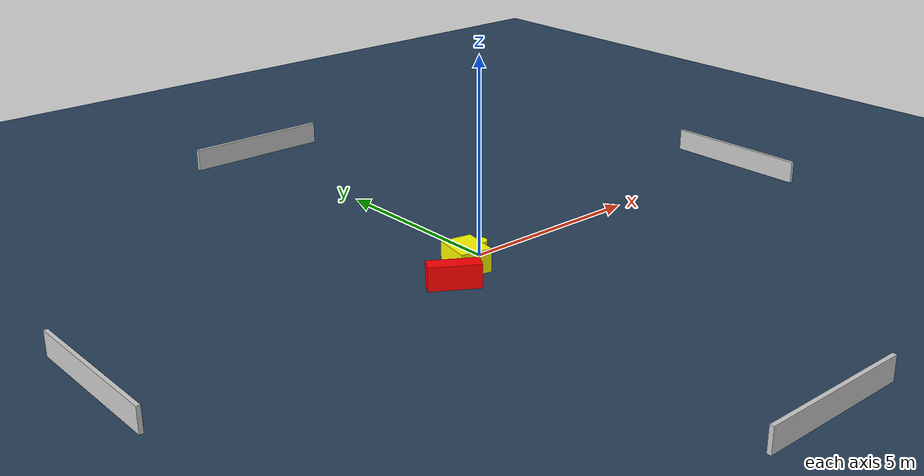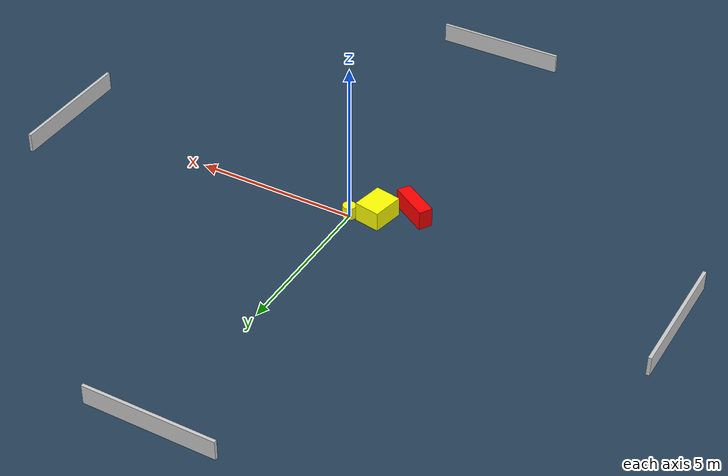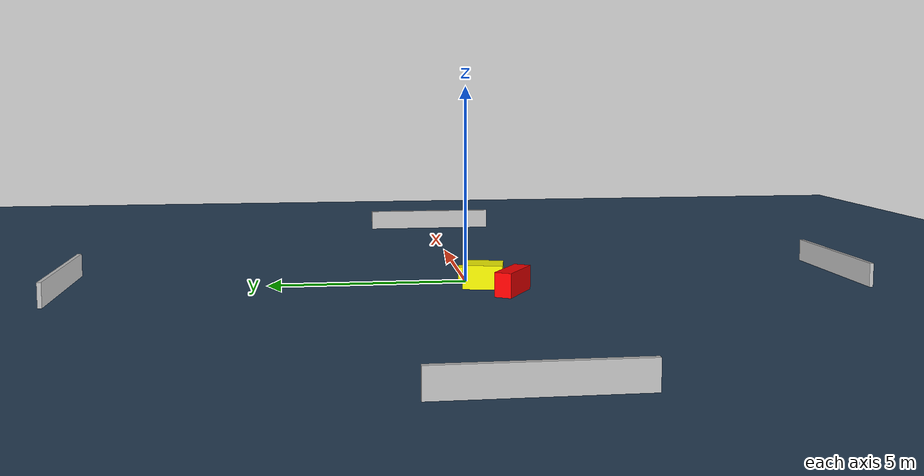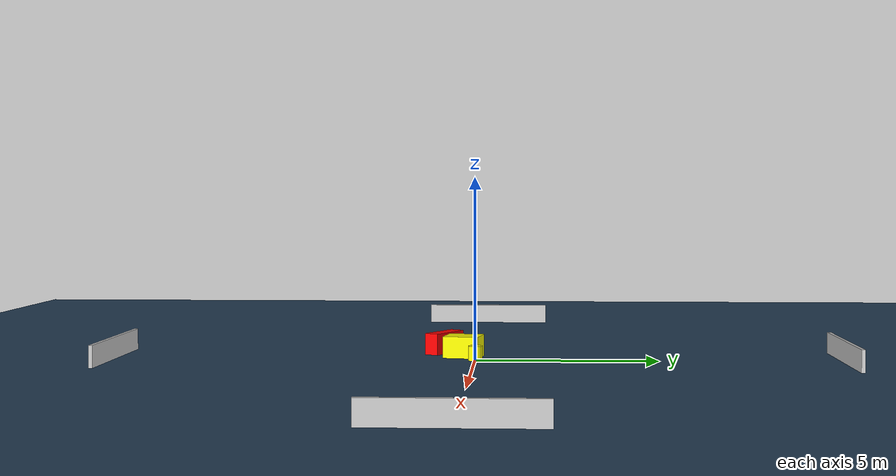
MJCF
<?xml version="1.0" ?>
<mujoco model="generated_environment">
  <option timestep="0.01" integrator="RK4" cone="elliptic"/>
  <default>
    <geom density="1"/>
  </default>
  <asset>
    <texture builtin="gradient" height="3072" name="skybox" rgb1="0.3 0.5 0.7" rgb2="0 0 0" type="skybox" width="512"/>
    <texture builtin="checker" height="300" name="groundplane" rgb1="0.2 0.3 0.4" rgb2="0.1 0.2 0.3" type="2d" width="300"/>
    <material name="groundplane" reflectance="0.2" texrepeat="5 5" texture="groundplane"/>
  </asset>
  <worldbody>
    <light dir="0 0 -1" directional="true" pos="0 0 1.5"/>
    <geom condim="3" friction="0.5 0.005 0.001" material="groundplane" name="floor" pos="0 0 0" size="0 0 0.05" type="plane"/>
    <body name="walls">
      <geom name="wall_1" condim="4" pos="-10.0 0.0 0.3" rgba="0.800000011920929 0.800000011920929 0.800000011920929 1.0" size="0.05 2.0 0.3" type="box"/>
      <geom name="wall_2" condim="4" pos="10.0 0.0 0.3" rgba="0.800000011920929 0.800000011920929 0.800000011920929 1.0" size="0.05 2.0 0.3" type="box"/>
      <geom name="wall_3" condim="4" pos="0.0 -10.0 0.3" rgba="0.800000011920929 0.800000011920929 0.800000011920929 1.0" size="2.0 0.05 0.3" type="box"/>
      <geom name="wall_4" condim="4" pos="0.0 10.0 0.3" rgba="0.800000011920929 0.800000011920929 0.800000011920929 1.0" size="2.0 0.05 0.3" type="box"/>
    </body>
    <body name="robot">
      <joint name="joint_x" type="slide" pos="0 0 0" axis="1 0 0"/>
      <joint name="joint_y" type="slide" pos="0 0 0" axis="0 1 0"/>
      <geom name="robot" type="cylinder" pos="0.0 0.0 0.2" size="0.2 0.2 0.0" mass="5.0" friction="1.0 0.005 0.0001" condim="4" rgba="1.0 1.0 0.0 1.0"/>
    </body>
    <body name="obstacle_1_movable">
      <geom name="obstacle_1_movable" condim="4" pos="-0.7275358973985508 -0.35524216422962174 0.3" euler="0 0 349.19036818607435" friction="0.0 0.005 0.001" rgba="1.0 1.0 0.0 1.0" size="0.40441387594583633 0.4945228344298417 0.3" type="box" mass="0.1"/>
      <joint type="free"/>
    </body>
    <body name="obstacle_2_static">
      <geom name="obstacle_2_static" condim="4" pos="-1.6175869406763808 -0.9534060043938407 0.3" euler="0 0 328.2339760596777" friction="0.0 0.005 0.001" rgba="1.0 0.0 0.0 1.0" size="0.6370955337985118 0.21036966737542273 0.3" type="box"/>
    </body>
  </worldbody>
  <actuator>
    <motor name="actuator_x" joint="joint_x" gear="1" ctrlrange="-1 1"/>
    <motor name="actuator_y" joint="joint_y" gear="1" ctrlrange="-1 1"/>
  </actuator>
</mujoco>
